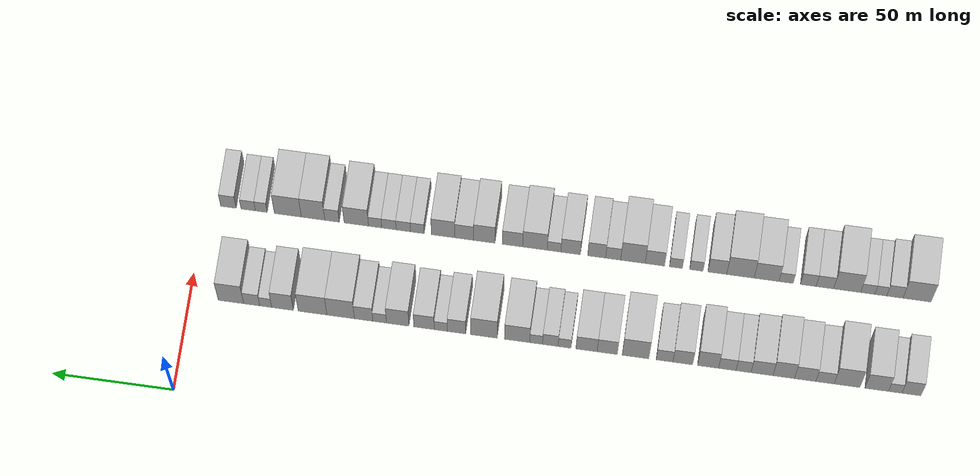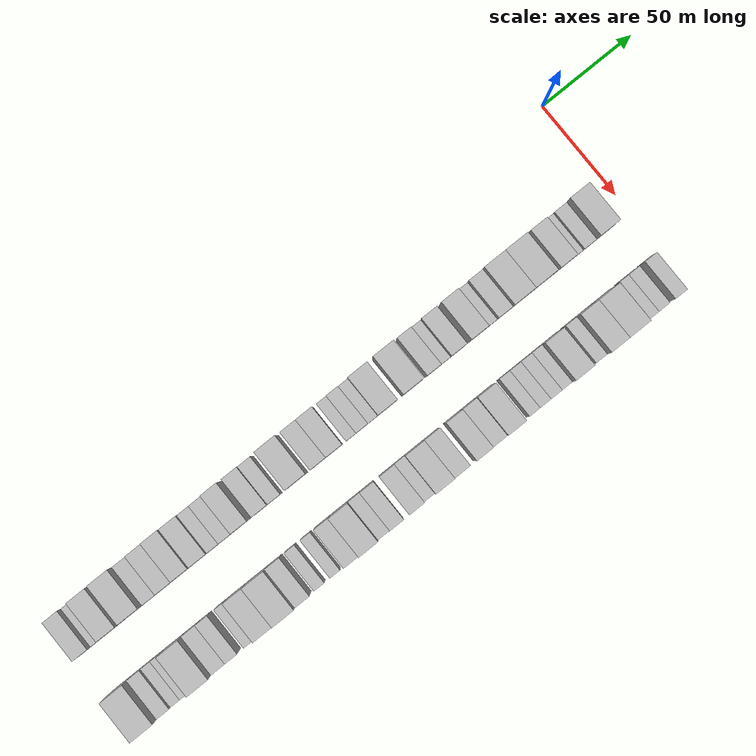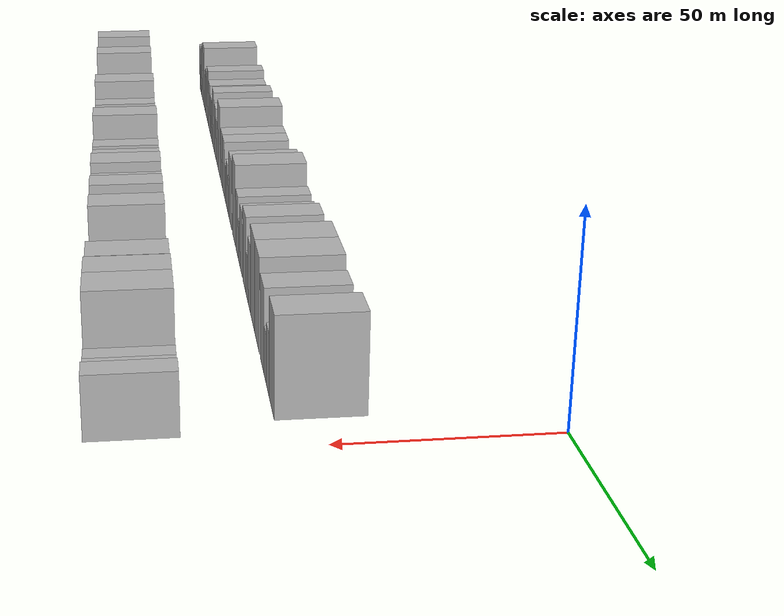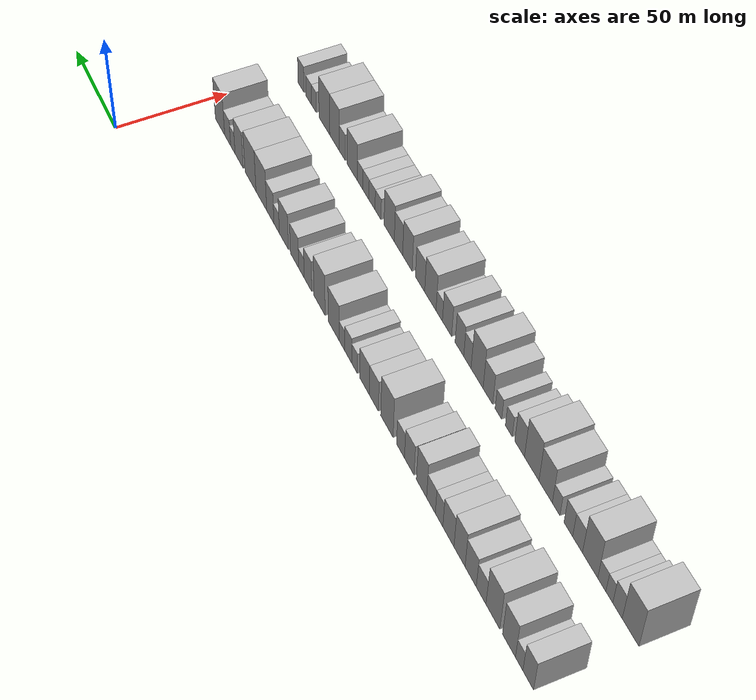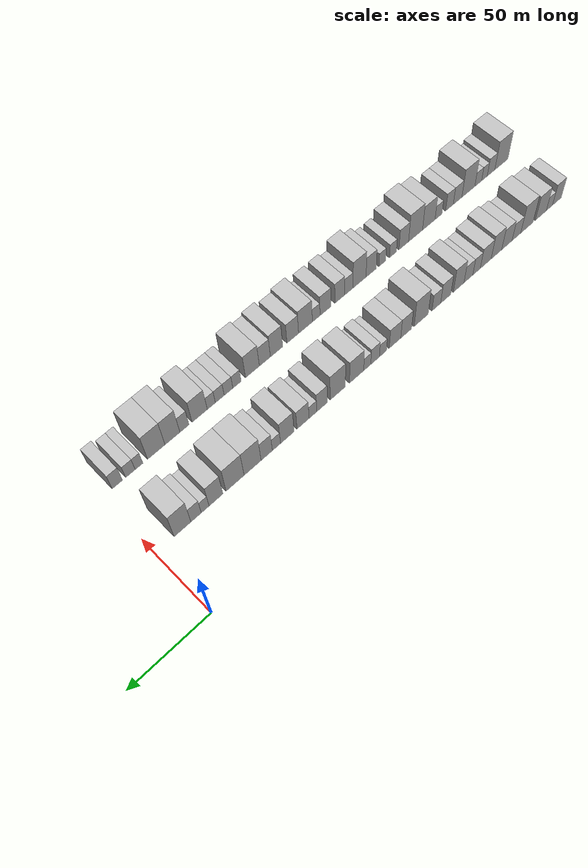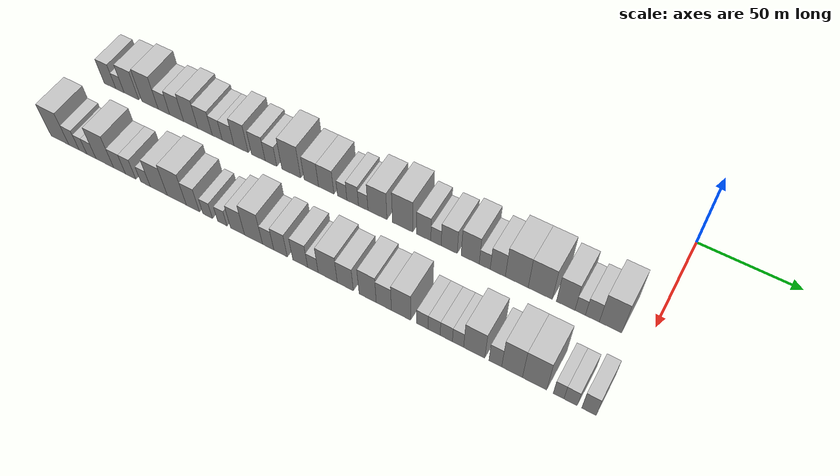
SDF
<sdf version="1.6">
 <world name="default">
  <model name="building_1">
   <static>1</static>
   <pose>50.0000 -296.1191 0 0.000000 0.000000 0.000000</pose>
   <link name="link">
    <pose>0 0 9.00 0 0 0</pose>
    <collision name="collision"><geometry><box><size>20.0000 7.7617 18.0000</size></box></geometry></collision>
    <visual name="visual">
     <cast_shadows>0</cast_shadows>
     <geometry><box><size>20.0000 7.7617 18.0000</size></box></geometry>
     <material>
      <script>
       <uri>model://HANNAS_wall/materials/scripts</uri>
       <uri>model://HANNAS_wall/materials/textures</uri>
       <name>vrc/HANNAS_wall</name>
      </script>
     </material>
    </visual>
   </link>
  </model>
  <model name="building_2">
   <static>1</static>
   <pose>50.0000 -289.5064 0 0.000000 0.000000 0.000000</pose>
   <link name="link">
    <pose>0 0 6.00 0 0 0</pose>
    <collision name="collision"><geometry><box><size>20.0000 5.4638 12.0000</size></box></geometry></collision>
    <visual name="visual">
     <cast_shadows>0</cast_shadows>
     <geometry><box><size>20.0000 5.4638 12.0000</size></box></geometry>
     <material>
      <script>
       <uri>model://HANNAS_wall/materials/scripts</uri>
       <uri>model://HANNAS_wall/materials/textures</uri>
       <name>vrc/HANNAS_wall</name>
      </script>
     </material>
    </visual>
   </link>
  </model>
  <model name="building_3">
   <static>1</static>
   <pose>50.0000 -281.9822 0 0.000000 0.000000 0.000000</pose>
   <link name="link">
    <pose>0 0 10.50 0 0 0</pose>
    <collision name="collision"><geometry><box><size>20.0000 9.5846 21.0000</size></box></geometry></collision>
    <visual name="visual">
     <cast_shadows>0</cast_shadows>
     <geometry><box><size>20.0000 9.5846 21.0000</size></box></geometry>
     <material>
      <script>
       <uri>model://HANNAS_wall/materials/scripts</uri>
       <uri>model://HANNAS_wall/materials/textures</uri>
       <name>vrc/HANNAS_wall</name>
      </script>
     </material>
    </visual>
   </link>
  </model>
  <model name="building_4">
   <static>1</static>
   <pose>50.0000 -269.9203 0 0.000000 0.000000 0.000000</pose>
   <link name="link">
    <pose>0 0 12.00 0 0 0</pose>
    <collision name="collision"><geometry><box><size>20.0000 10.5393 24.0000</size></box></geometry></collision>
    <visual name="visual">
     <cast_shadows>0</cast_shadows>
     <geometry><box><size>20.0000 10.5393 24.0000</size></box></geometry>
     <material>
      <script>
       <uri>model://HANNAS_wall/materials/scripts</uri>
       <uri>model://HANNAS_wall/materials/textures</uri>
       <name>vrc/HANNAS_wall</name>
      </script>
     </material>
    </visual>
   </link>
  </model>
  <model name="building_5">
   <static>1</static>
   <pose>50.0000 -260.9323 0 0.000000 0.000000 0.000000</pose>
   <link name="link">
    <pose>0 0 7.50 0 0 0</pose>
    <collision name="collision"><geometry><box><size>20.0000 7.4368 15.0000</size></box></geometry></collision>
    <visual name="visual">
     <cast_shadows>0</cast_shadows>
     <geometry><box><size>20.0000 7.4368 15.0000</size></box></geometry>
     <material>
      <script>
       <uri>model://HANNAS_wall/materials/scripts</uri>
       <uri>model://HANNAS_wall/materials/textures</uri>
       <name>vrc/HANNAS_wall</name>
      </script>
     </material>
    </visual>
   </link>
  </model>
  <model name="building_6">
   <static>1</static>
   <pose>50.0000 -252.8447 0 0.000000 0.000000 0.000000</pose>
   <link name="link">
    <pose>0 0 9.00 0 0 0</pose>
    <collision name="collision"><geometry><box><size>20.0000 8.7385 18.0000</size></box></geometry></collision>
    <visual name="visual">
     <cast_shadows>0</cast_shadows>
     <geometry><box><size>20.0000 8.7385 18.0000</size></box></geometry>
     <material>
      <script>
       <uri>model://HANNAS_wall/materials/scripts</uri>
       <uri>model://HANNAS_wall/materials/textures</uri>
       <name>vrc/HANNAS_wall</name>
      </script>
     </material>
    </visual>
   </link>
  </model>
  <model name="building_7">
   <static>1</static>
   <pose>50.0000 -244.0707 0 0.000000 0.000000 0.000000</pose>
   <link name="link">
    <pose>0 0 10.50 0 0 0</pose>
    <collision name="collision"><geometry><box><size>20.0000 8.8095 21.0000</size></box></geometry></collision>
    <visual name="visual">
     <cast_shadows>0</cast_shadows>
     <geometry><box><size>20.0000 8.8095 21.0000</size></box></geometry>
     <material>
      <script>
       <uri>model://HANNAS_wall/materials/scripts</uri>
       <uri>model://HANNAS_wall/materials/textures</uri>
       <name>vrc/HANNAS_wall</name>
      </script>
     </material>
    </visual>
   </link>
  </model>
  <model name="building_8">
   <static>1</static>
   <pose>50.0000 -235.1789 0 0.000000 0.000000 0.000000</pose>
   <link name="link">
    <pose>0 0 9.00 0 0 0</pose>
    <collision name="collision"><geometry><box><size>20.0000 8.9741 18.0000</size></box></geometry></collision>
    <visual name="visual">
     <cast_shadows>0</cast_shadows>
     <geometry><box><size>20.0000 8.9741 18.0000</size></box></geometry>
     <material>
      <script>
       <uri>model://HANNAS_wall/materials/scripts</uri>
       <uri>model://HANNAS_wall/materials/textures</uri>
       <name>vrc/HANNAS_wall</name>
      </script>
     </material>
    </visual>
   </link>
  </model>
  <model name="building_9">
   <static>1</static>
   <pose>50.0000 -227.6335 0 0.000000 0.000000 0.000000</pose>
   <link name="link">
    <pose>0 0 7.50 0 0 0</pose>
    <collision name="collision"><geometry><box><size>20.0000 6.1166 15.0000</size></box></geometry></collision>
    <visual name="visual">
     <cast_shadows>0</cast_shadows>
     <geometry><box><size>20.0000 6.1166 15.0000</size></box></geometry>
     <material>
      <script>
       <uri>model://HANNAS_wall/materials/scripts</uri>
       <uri>model://HANNAS_wall/materials/textures</uri>
       <name>vrc/HANNAS_wall</name>
      </script>
     </material>
    </visual>
   </link>
  </model>
  <model name="building_10">
   <static>1</static>
   <pose>50.0000 -220.9918 0 0.000000 0.000000 0.000000</pose>
   <link name="link">
    <pose>0 0 7.50 0 0 0</pose>
    <collision name="collision"><geometry><box><size>20.0000 7.1667 15.0000</size></box></geometry></collision>
    <visual name="visual">
     <cast_shadows>0</cast_shadows>
     <geometry><box><size>20.0000 7.1667 15.0000</size></box></geometry>
     <material>
      <script>
       <uri>model://HANNAS_wall/materials/scripts</uri>
       <uri>model://HANNAS_wall/materials/textures</uri>
       <name>vrc/HANNAS_wall</name>
      </script>
     </material>
    </visual>
   </link>
  </model>
  <model name="building_11">
   <static>1</static>
   <pose>50.0000 -213.1312 0 0.000000 0.000000 0.000000</pose>
   <link name="link">
    <pose>0 0 10.50 0 0 0</pose>
    <collision name="collision"><geometry><box><size>20.0000 8.5546 21.0000</size></box></geometry></collision>
    <visual name="visual">
     <cast_shadows>0</cast_shadows>
     <geometry><box><size>20.0000 8.5546 21.0000</size></box></geometry>
     <material>
      <script>
       <uri>model://HANNAS_wall/materials/scripts</uri>
       <uri>model://HANNAS_wall/materials/textures</uri>
       <name>vrc/HANNAS_wall</name>
      </script>
     </material>
    </visual>
   </link>
  </model>
  <model name="building_12">
   <static>1</static>
   <pose>50.0000 -202.7954 0 0.000000 0.000000 0.000000</pose>
   <link name="link">
    <pose>0 0 9.00 0 0 0</pose>
    <collision name="collision"><geometry><box><size>20.0000 8.1169 18.0000</size></box></geometry></collision>
    <visual name="visual">
     <cast_shadows>0</cast_shadows>
     <geometry><box><size>20.0000 8.1169 18.0000</size></box></geometry>
     <material>
      <script>
       <uri>model://HANNAS_wall/materials/scripts</uri>
       <uri>model://HANNAS_wall/materials/textures</uri>
       <name>vrc/HANNAS_wall</name>
      </script>
     </material>
    </visual>
   </link>
  </model>
  <model name="building_13">
   <static>1</static>
   <pose>50.0000 -195.3282 0 0.000000 0.000000 0.000000</pose>
   <link name="link">
    <pose>0 0 7.50 0 0 0</pose>
    <collision name="collision"><geometry><box><size>20.0000 6.8176 15.0000</size></box></geometry></collision>
    <visual name="visual">
     <cast_shadows>0</cast_shadows>
     <geometry><box><size>20.0000 6.8176 15.0000</size></box></geometry>
     <material>
      <script>
       <uri>model://HANNAS_wall/materials/scripts</uri>
       <uri>model://HANNAS_wall/materials/textures</uri>
       <name>vrc/HANNAS_wall</name>
      </script>
     </material>
    </visual>
   </link>
  </model>
  <model name="building_14">
   <static>1</static>
   <pose>50.0000 -183.4700 0 0.000000 0.000000 0.000000</pose>
   <link name="link">
    <pose>0 0 12.00 0 0 0</pose>
    <collision name="collision"><geometry><box><size>20.0000 10.8988 24.0000</size></box></geometry></collision>
    <visual name="visual">
     <cast_shadows>0</cast_shadows>
     <geometry><box><size>20.0000 10.8988 24.0000</size></box></geometry>
     <material>
      <script>
       <uri>model://HANNAS_wall/materials/scripts</uri>
       <uri>model://HANNAS_wall/materials/textures</uri>
       <name>vrc/HANNAS_wall</name>
      </script>
     </material>
    </visual>
   </link>
  </model>
  <model name="building_15">
   <static>1</static>
   <pose>50.0000 -171.8970 0 0.000000 0.000000 0.000000</pose>
   <link name="link">
    <pose>0 0 9.00 0 0 0</pose>
    <collision name="collision"><geometry><box><size>20.0000 8.2473 18.0000</size></box></geometry></collision>
    <visual name="visual">
     <cast_shadows>0</cast_shadows>
     <geometry><box><size>20.0000 8.2473 18.0000</size></box></geometry>
     <material>
      <script>
       <uri>model://HANNAS_wall/materials/scripts</uri>
       <uri>model://HANNAS_wall/materials/textures</uri>
       <name>vrc/HANNAS_wall</name>
      </script>
     </material>
    </visual>
   </link>
  </model>
  <model name="building_16">
   <static>1</static>
   <pose>50.0000 -163.4078 0 0.000000 0.000000 0.000000</pose>
   <link name="link">
    <pose>0 0 9.00 0 0 0</pose>
    <collision name="collision"><geometry><box><size>20.0000 8.7312 18.0000</size></box></geometry></collision>
    <visual name="visual">
     <cast_shadows>0</cast_shadows>
     <geometry><box><size>20.0000 8.7312 18.0000</size></box></geometry>
     <material>
      <script>
       <uri>model://HANNAS_wall/materials/scripts</uri>
       <uri>model://HANNAS_wall/materials/textures</uri>
       <name>vrc/HANNAS_wall</name>
      </script>
     </material>
    </visual>
   </link>
  </model>
  <model name="building_17">
   <static>1</static>
   <pose>50.0000 -154.3923 0 0.000000 0.000000 0.000000</pose>
   <link name="link">
    <pose>0 0 6.00 0 0 0</pose>
    <collision name="collision"><geometry><box><size>20.0000 5.2997 12.0000</size></box></geometry></collision>
    <visual name="visual">
     <cast_shadows>0</cast_shadows>
     <geometry><box><size>20.0000 5.2997 12.0000</size></box></geometry>
     <material>
      <script>
       <uri>model://HANNAS_wall/materials/scripts</uri>
       <uri>model://HANNAS_wall/materials/textures</uri>
       <name>vrc/HANNAS_wall</name>
      </script>
     </material>
    </visual>
   </link>
  </model>
  <model name="building_18">
   <static>1</static>
   <pose>50.0000 -148.5322 0 0.000000 0.000000 0.000000</pose>
   <link name="link">
    <pose>0 0 7.50 0 0 0</pose>
    <collision name="collision"><geometry><box><size>20.0000 6.4204 15.0000</size></box></geometry></collision>
    <visual name="visual">
     <cast_shadows>0</cast_shadows>
     <geometry><box><size>20.0000 6.4204 15.0000</size></box></geometry>
     <material>
      <script>
       <uri>model://HANNAS_wall/materials/scripts</uri>
       <uri>model://HANNAS_wall/materials/textures</uri>
       <name>vrc/HANNAS_wall</name>
      </script>
     </material>
    </visual>
   </link>
  </model>
  <model name="building_19">
   <static>1</static>
   <pose>50.0000 -142.7000 0 0.000000 0.000000 0.000000</pose>
   <link name="link">
    <pose>0 0 6.00 0 0 0</pose>
    <collision name="collision"><geometry><box><size>20.0000 5.2441 12.0000</size></box></geometry></collision>
    <visual name="visual">
     <cast_shadows>0</cast_shadows>
     <geometry><box><size>20.0000 5.2441 12.0000</size></box></geometry>
     <material>
      <script>
       <uri>model://HANNAS_wall/materials/scripts</uri>
       <uri>model://HANNAS_wall/materials/textures</uri>
       <name>vrc/HANNAS_wall</name>
      </script>
     </material>
    </visual>
   </link>
  </model>
  <model name="building_20">
   <static>1</static>
   <pose>50.0000 -134.8904 0 0.000000 0.000000 0.000000</pose>
   <link name="link">
    <pose>0 0 10.50 0 0 0</pose>
    <collision name="collision"><geometry><box><size>20.0000 10.3751 21.0000</size></box></geometry></collision>
    <visual name="visual">
     <cast_shadows>0</cast_shadows>
     <geometry><box><size>20.0000 10.3751 21.0000</size></box></geometry>
     <material>
      <script>
       <uri>model://HANNAS_wall/materials/scripts</uri>
       <uri>model://HANNAS_wall/materials/textures</uri>
       <name>vrc/HANNAS_wall</name>
      </script>
     </material>
    </visual>
   </link>
  </model>
  <model name="building_21">
   <static>1</static>
   <pose>50.0000 -121.2510 0 0.000000 0.000000 0.000000</pose>
   <link name="link">
    <pose>0 0 12.00 0 0 0</pose>
    <collision name="collision"><geometry><box><size>20.0000 10.9037 24.0000</size></box></geometry></collision>
    <visual name="visual">
     <cast_shadows>0</cast_shadows>
     <geometry><box><size>20.0000 10.9037 24.0000</size></box></geometry>
     <material>
      <script>
       <uri>model://HANNAS_wall/materials/scripts</uri>
       <uri>model://HANNAS_wall/materials/textures</uri>
       <name>vrc/HANNAS_wall</name>
      </script>
     </material>
    </visual>
   </link>
  </model>
  <model name="building_22">
   <static>1</static>
   <pose>50.0000 -110.0232 0 0.000000 0.000000 0.000000</pose>
   <link name="link">
    <pose>0 0 9.00 0 0 0</pose>
    <collision name="collision"><geometry><box><size>20.0000 7.5519 18.0000</size></box></geometry></collision>
    <visual name="visual">
     <cast_shadows>0</cast_shadows>
     <geometry><box><size>20.0000 7.5519 18.0000</size></box></geometry>
     <material>
      <script>
       <uri>model://HANNAS_wall/materials/scripts</uri>
       <uri>model://HANNAS_wall/materials/textures</uri>
       <name>vrc/HANNAS_wall</name>
      </script>
     </material>
    </visual>
   </link>
  </model>
  <model name="building_23">
   <static>1</static>
   <pose>50.0000 -103.5406 0 0.000000 0.000000 0.000000</pose>
   <link name="link">
    <pose>0 0 6.00 0 0 0</pose>
    <collision name="collision"><geometry><box><size>20.0000 5.4134 12.0000</size></box></geometry></collision>
    <visual name="visual">
     <cast_shadows>0</cast_shadows>
     <geometry><box><size>20.0000 5.4134 12.0000</size></box></geometry>
     <material>
      <script>
       <uri>model://HANNAS_wall/materials/scripts</uri>
       <uri>model://HANNAS_wall/materials/textures</uri>
       <name>vrc/HANNAS_wall</name>
      </script>
     </material>
    </visual>
   </link>
  </model>
  <model name="building_24">
   <static>1</static>
   <pose>50.0000 -96.6438 0 0.000000 0.000000 0.000000</pose>
   <link name="link">
    <pose>0 0 9.00 0 0 0</pose>
    <collision name="collision"><geometry><box><size>20.0000 8.3801 18.0000</size></box></geometry></collision>
    <visual name="visual">
     <cast_shadows>0</cast_shadows>
     <geometry><box><size>20.0000 8.3801 18.0000</size></box></geometry>
     <material>
      <script>
       <uri>model://HANNAS_wall/materials/scripts</uri>
       <uri>model://HANNAS_wall/materials/textures</uri>
       <name>vrc/HANNAS_wall</name>
      </script>
     </material>
    </visual>
   </link>
  </model>
  <model name="building_25">
   <static>1</static>
   <pose>50.0000 -85.8106 0 0.000000 0.000000 0.000000</pose>
   <link name="link">
    <pose>0 0 10.50 0 0 0</pose>
    <collision name="collision"><geometry><box><size>20.0000 9.2864 21.0000</size></box></geometry></collision>
    <visual name="visual">
     <cast_shadows>0</cast_shadows>
     <geometry><box><size>20.0000 9.2864 21.0000</size></box></geometry>
     <material>
      <script>
       <uri>model://HANNAS_wall/materials/scripts</uri>
       <uri>model://HANNAS_wall/materials/textures</uri>
       <name>vrc/HANNAS_wall</name>
      </script>
     </material>
    </visual>
   </link>
  </model>
  <model name="building_26">
   <static>1</static>
   <pose>50.0000 -78.3732 0 0.000000 0.000000 0.000000</pose>
   <link name="link">
    <pose>0 0 6.00 0 0 0</pose>
    <collision name="collision"><geometry><box><size>20.0000 5.5884 12.0000</size></box></geometry></collision>
    <visual name="visual">
     <cast_shadows>0</cast_shadows>
     <geometry><box><size>20.0000 5.5884 12.0000</size></box></geometry>
     <material>
      <script>
       <uri>model://HANNAS_wall/materials/scripts</uri>
       <uri>model://HANNAS_wall/materials/textures</uri>
       <name>vrc/HANNAS_wall</name>
      </script>
     </material>
    </visual>
   </link>
  </model>
  <model name="building_27">
   <static>1</static>
   <pose>50.0000 -71.7725 0 0.000000 0.000000 0.000000</pose>
   <link name="link">
    <pose>0 0 9.00 0 0 0</pose>
    <collision name="collision"><geometry><box><size>20.0000 7.6129 18.0000</size></box></geometry></collision>
    <visual name="visual">
     <cast_shadows>0</cast_shadows>
     <geometry><box><size>20.0000 7.6129 18.0000</size></box></geometry>
     <material>
      <script>
       <uri>model://HANNAS_wall/materials/scripts</uri>
       <uri>model://HANNAS_wall/materials/textures</uri>
       <name>vrc/HANNAS_wall</name>
      </script>
     </material>
    </visual>
   </link>
  </model>
  <model name="building_28">
   <static>1</static>
   <pose>50.0000 -62.2975 0 0.000000 0.000000 0.000000</pose>
   <link name="link">
    <pose>0 0 12.00 0 0 0</pose>
    <collision name="collision"><geometry><box><size>20.0000 11.3370 24.0000</size></box></geometry></collision>
    <visual name="visual">
     <cast_shadows>0</cast_shadows>
     <geometry><box><size>20.0000 11.3370 24.0000</size></box></geometry>
     <material>
      <script>
       <uri>model://HANNAS_wall/materials/scripts</uri>
       <uri>model://HANNAS_wall/materials/textures</uri>
       <name>vrc/HANNAS_wall</name>
      </script>
     </material>
    </visual>
   </link>
  </model>
  <model name="building_29">
   <static>1</static>
   <pose>50.0000 -50.7047 0 0.000000 0.000000 0.000000</pose>
   <link name="link">
    <pose>0 0 12.00 0 0 0</pose>
    <collision name="collision"><geometry><box><size>20.0000 11.8486 24.0000</size></box></geometry></collision>
    <visual name="visual">
     <cast_shadows>0</cast_shadows>
     <geometry><box><size>20.0000 11.8486 24.0000</size></box></geometry>
     <material>
      <script>
       <uri>model://HANNAS_wall/materials/scripts</uri>
       <uri>model://HANNAS_wall/materials/textures</uri>
       <name>vrc/HANNAS_wall</name>
      </script>
     </material>
    </visual>
   </link>
  </model>
  <model name="building_30">
   <static>1</static>
   <pose>50.0000 -38.3129 0 0.000000 0.000000 0.000000</pose>
   <link name="link">
    <pose>0 0 10.50 0 0 0</pose>
    <collision name="collision"><geometry><box><size>20.0000 8.9351 21.0000</size></box></geometry></collision>
    <visual name="visual">
     <cast_shadows>0</cast_shadows>
     <geometry><box><size>20.0000 8.9351 21.0000</size></box></geometry>
     <material>
      <script>
       <uri>model://HANNAS_wall/materials/scripts</uri>
       <uri>model://HANNAS_wall/materials/textures</uri>
       <name>vrc/HANNAS_wall</name>
      </script>
     </material>
    </visual>
   </link>
  </model>
  <model name="building_31">
   <static>1</static>
   <pose>50.0000 -31.3603 0 0.000000 0.000000 0.000000</pose>
   <link name="link">
    <pose>0 0 6.00 0 0 0</pose>
    <collision name="collision"><geometry><box><size>20.0000 4.9701 12.0000</size></box></geometry></collision>
    <visual name="visual">
     <cast_shadows>0</cast_shadows>
     <geometry><box><size>20.0000 4.9701 12.0000</size></box></geometry>
     <material>
      <script>
       <uri>model://HANNAS_wall/materials/scripts</uri>
       <uri>model://HANNAS_wall/materials/textures</uri>
       <name>vrc/HANNAS_wall</name>
      </script>
     </material>
    </visual>
   </link>
  </model>
  <model name="building_32">
   <static>1</static>
   <pose>50.0000 -25.5734 0 0.000000 0.000000 0.000000</pose>
   <link name="link">
    <pose>0 0 7.50 0 0 0</pose>
    <collision name="collision"><geometry><box><size>20.0000 6.6037 15.0000</size></box></geometry></collision>
    <visual name="visual">
     <cast_shadows>0</cast_shadows>
     <geometry><box><size>20.0000 6.6037 15.0000</size></box></geometry>
     <material>
      <script>
       <uri>model://HANNAS_wall/materials/scripts</uri>
       <uri>model://HANNAS_wall/materials/textures</uri>
       <name>vrc/HANNAS_wall</name>
      </script>
     </material>
    </visual>
   </link>
  </model>
  <model name="building_33">
   <static>1</static>
   <pose>50.0000 -17.0000 0 0.000000 0.000000 0.000000</pose>
   <link name="link">
    <pose>0 0 12.00 0 0 0</pose>
    <collision name="collision"><geometry><box><size>20.0000 10.5430 24.0000</size></box></geometry></collision>
    <visual name="visual">
     <cast_shadows>0</cast_shadows>
     <geometry><box><size>20.0000 10.5430 24.0000</size></box></geometry>
     <material>
      <script>
       <uri>model://HANNAS_wall/materials/scripts</uri>
       <uri>model://HANNAS_wall/materials/textures</uri>
       <name>vrc/HANNAS_wall</name>
      </script>
     </material>
    </visual>
   </link>
  </model>
  <model name="building_70">
   <static>1</static>
   <pose>90.0000 -294.2037 0 0.000000 0.000000 0.000000</pose>
   <link name="link">
    <pose>0 0 12.00 0 0 0</pose>
    <collision name="collision"><geometry><box><size>20.0000 11.5926 24.0000</size></box></geometry></collision>
    <visual name="visual">
     <cast_shadows>0</cast_shadows>
     <geometry><box><size>20.0000 11.5926 24.0000</size></box></geometry>
     <material>
      <script>
       <uri>model://HANNAS_wall/materials/scripts</uri>
       <uri>model://HANNAS_wall/materials/textures</uri>
       <name>vrc/HANNAS_wall</name>
      </script>
     </material>
    </visual>
   </link>
  </model>
  <model name="building_71">
   <static>1</static>
   <pose>90.0000 -285.1056 0 0.000000 0.000000 0.000000</pose>
   <link name="link">
    <pose>0 0 7.50 0 0 0</pose>
    <collision name="collision"><geometry><box><size>20.0000 6.6035 15.0000</size></box></geometry></collision>
    <visual name="visual">
     <cast_shadows>0</cast_shadows>
     <geometry><box><size>20.0000 6.6035 15.0000</size></box></geometry>
     <material>
      <script>
       <uri>model://HANNAS_wall/materials/scripts</uri>
       <uri>model://HANNAS_wall/materials/textures</uri>
       <name>vrc/HANNAS_wall</name>
      </script>
     </material>
    </visual>
   </link>
  </model>
  <model name="building_72">
   <static>1</static>
   <pose>90.0000 -279.3590 0 0.000000 0.000000 0.000000</pose>
   <link name="link">
    <pose>0 0 6.00 0 0 0</pose>
    <collision name="collision"><geometry><box><size>20.0000 4.8897 12.0000</size></box></geometry></collision>
    <visual name="visual">
     <cast_shadows>0</cast_shadows>
     <geometry><box><size>20.0000 4.8897 12.0000</size></box></geometry>
     <material>
      <script>
       <uri>model://HANNAS_wall/materials/scripts</uri>
       <uri>model://HANNAS_wall/materials/textures</uri>
       <name>vrc/HANNAS_wall</name>
      </script>
     </material>
    </visual>
   </link>
  </model>
  <model name="building_73">
   <static>1</static>
   <pose>90.0000 -273.9968 0 0.000000 0.000000 0.000000</pose>
   <link name="link">
    <pose>0 0 6.00 0 0 0</pose>
    <collision name="collision"><geometry><box><size>20.0000 5.8347 12.0000</size></box></geometry></collision>
    <visual name="visual">
     <cast_shadows>0</cast_shadows>
     <geometry><box><size>20.0000 5.8347 12.0000</size></box></geometry>
     <material>
      <script>
       <uri>model://HANNAS_wall/materials/scripts</uri>
       <uri>model://HANNAS_wall/materials/textures</uri>
       <name>vrc/HANNAS_wall</name>
      </script>
     </material>
    </visual>
   </link>
  </model>
  <model name="building_74">
   <static>1</static>
   <pose>90.0000 -265.5483 0 0.000000 0.000000 0.000000</pose>
   <link name="link">
    <pose>0 0 12.00 0 0 0</pose>
    <collision name="collision"><geometry><box><size>20.0000 11.0624 24.0000</size></box></geometry></collision>
    <visual name="visual">
     <cast_shadows>0</cast_shadows>
     <geometry><box><size>20.0000 11.0624 24.0000</size></box></geometry>
     <material>
      <script>
       <uri>model://HANNAS_wall/materials/scripts</uri>
       <uri>model://HANNAS_wall/materials/textures</uri>
       <name>vrc/HANNAS_wall</name>
      </script>
     </material>
    </visual>
   </link>
  </model>
  <model name="building_75">
   <static>1</static>
   <pose>90.0000 -256.3970 0 0.000000 0.000000 0.000000</pose>
   <link name="link">
    <pose>0 0 7.50 0 0 0</pose>
    <collision name="collision"><geometry><box><size>20.0000 7.2402 15.0000</size></box></geometry></collision>
    <visual name="visual">
     <cast_shadows>0</cast_shadows>
     <geometry><box><size>20.0000 7.2402 15.0000</size></box></geometry>
     <material>
      <script>
       <uri>model://HANNAS_wall/materials/scripts</uri>
       <uri>model://HANNAS_wall/materials/textures</uri>
       <name>vrc/HANNAS_wall</name>
      </script>
     </material>
    </visual>
   </link>
  </model>
  <model name="building_76">
   <static>1</static>
   <pose>90.0000 -249.5553 0 0.000000 0.000000 0.000000</pose>
   <link name="link">
    <pose>0 0 7.50 0 0 0</pose>
    <collision name="collision"><geometry><box><size>20.0000 6.4432 15.0000</size></box></geometry></collision>
    <visual name="visual">
     <cast_shadows>0</cast_shadows>
     <geometry><box><size>20.0000 6.4432 15.0000</size></box></geometry>
     <material>
      <script>
       <uri>model://HANNAS_wall/materials/scripts</uri>
       <uri>model://HANNAS_wall/materials/textures</uri>
       <name>vrc/HANNAS_wall</name>
      </script>
     </material>
    </visual>
   </link>
  </model>
  <model name="building_77">
   <static>1</static>
   <pose>90.0000 -240.4189 0 0.000000 0.000000 0.000000</pose>
   <link name="link">
    <pose>0 0 6.00 0 0 0</pose>
    <collision name="collision"><geometry><box><size>20.0000 5.8294 12.0000</size></box></geometry></collision>
    <visual name="visual">
     <cast_shadows>0</cast_shadows>
     <geometry><box><size>20.0000 5.8294 12.0000</size></box></geometry>
     <material>
      <script>
       <uri>model://HANNAS_wall/materials/scripts</uri>
       <uri>model://HANNAS_wall/materials/textures</uri>
       <name>vrc/HANNAS_wall</name>
      </script>
     </material>
    </visual>
   </link>
  </model>
  <model name="building_78">
   <static>1</static>
   <pose>90.0000 -232.3785 0 0.000000 0.000000 0.000000</pose>
   <link name="link">
    <pose>0 0 10.50 0 0 0</pose>
    <collision name="collision"><geometry><box><size>20.0000 10.2515 21.0000</size></box></geometry></collision>
    <visual name="visual">
     <cast_shadows>0</cast_shadows>
     <geometry><box><size>20.0000 10.2515 21.0000</size></box></geometry>
     <material>
      <script>
       <uri>model://HANNAS_wall/materials/scripts</uri>
       <uri>model://HANNAS_wall/materials/textures</uri>
       <name>vrc/HANNAS_wall</name>
      </script>
     </material>
    </visual>
   </link>
  </model>
  <model name="building_79">
   <static>1</static>
   <pose>90.0000 -221.5871 0 0.000000 0.000000 0.000000</pose>
   <link name="link">
    <pose>0 0 12.00 0 0 0</pose>
    <collision name="collision"><geometry><box><size>20.0000 11.3312 24.0000</size></box></geometry></collision>
    <visual name="visual">
     <cast_shadows>0</cast_shadows>
     <geometry><box><size>20.0000 11.3312 24.0000</size></box></geometry>
     <material>
      <script>
       <uri>model://HANNAS_wall/materials/scripts</uri>
       <uri>model://HANNAS_wall/materials/textures</uri>
       <name>vrc/HANNAS_wall</name>
      </script>
     </material>
    </visual>
   </link>
  </model>
  <model name="building_80">
   <static>1</static>
   <pose>90.0000 -212.0678 0 0.000000 0.000000 0.000000</pose>
   <link name="link">
    <pose>0 0 9.00 0 0 0</pose>
    <collision name="collision"><geometry><box><size>20.0000 7.7074 18.0000</size></box></geometry></collision>
    <visual name="visual">
     <cast_shadows>0</cast_shadows>
     <geometry><box><size>20.0000 7.7074 18.0000</size></box></geometry>
     <material>
      <script>
       <uri>model://HANNAS_wall/materials/scripts</uri>
       <uri>model://HANNAS_wall/materials/textures</uri>
       <name>vrc/HANNAS_wall</name>
      </script>
     </material>
    </visual>
   </link>
  </model>
  <model name="building_81">
   <static>1</static>
   <pose>90.0000 -203.4498 0 0.000000 0.000000 0.000000</pose>
   <link name="link">
    <pose>0 0 6.00 0 0 0</pose>
    <collision name="collision"><geometry><box><size>20.0000 5.5286 12.0000</size></box></geometry></collision>
    <visual name="visual">
     <cast_shadows>0</cast_shadows>
     <geometry><box><size>20.0000 5.5286 12.0000</size></box></geometry>
     <material>
      <script>
       <uri>model://HANNAS_wall/materials/scripts</uri>
       <uri>model://HANNAS_wall/materials/textures</uri>
       <name>vrc/HANNAS_wall</name>
      </script>
     </material>
    </visual>
   </link>
  </model>
  <model name="building_82">
   <static>1</static>
   <pose>90.0000 -195.0037 0 0.000000 0.000000 0.000000</pose>
   <link name="link">
    <pose>0 0 6.00 0 0 0</pose>
    <collision name="collision"><geometry><box><size>20.0000 5.3634 12.0000</size></box></geometry></collision>
    <visual name="visual">
     <cast_shadows>0</cast_shadows>
     <geometry><box><size>20.0000 5.3634 12.0000</size></box></geometry>
     <material>
      <script>
       <uri>model://HANNAS_wall/materials/scripts</uri>
       <uri>model://HANNAS_wall/materials/textures</uri>
       <name>vrc/HANNAS_wall</name>
      </script>
     </material>
    </visual>
   </link>
  </model>
  <model name="building_83">
   <static>1</static>
   <pose>90.0000 -186.3278 0 0.000000 0.000000 0.000000</pose>
   <link name="link">
    <pose>0 0 9.00 0 0 0</pose>
    <collision name="collision"><geometry><box><size>20.0000 7.9885 18.0000</size></box></geometry></collision>
    <visual name="visual">
     <cast_shadows>0</cast_shadows>
     <geometry><box><size>20.0000 7.9885 18.0000</size></box></geometry>
     <material>
      <script>
       <uri>model://HANNAS_wall/materials/scripts</uri>
       <uri>model://HANNAS_wall/materials/textures</uri>
       <name>vrc/HANNAS_wall</name>
      </script>
     </material>
    </visual>
   </link>
  </model>
  <model name="building_84">
   <static>1</static>
   <pose>90.0000 -177.2716 0 0.000000 0.000000 0.000000</pose>
   <link name="link">
    <pose>0 0 12.00 0 0 0</pose>
    <collision name="collision"><geometry><box><size>20.0000 10.1237 24.0000</size></box></geometry></collision>
    <visual name="visual">
     <cast_shadows>0</cast_shadows>
     <geometry><box><size>20.0000 10.1237 24.0000</size></box></geometry>
     <material>
      <script>
       <uri>model://HANNAS_wall/materials/scripts</uri>
       <uri>model://HANNAS_wall/materials/textures</uri>
       <name>vrc/HANNAS_wall</name>
      </script>
     </material>
    </visual>
   </link>
  </model>
  <model name="building_85">
   <static>1</static>
   <pose>90.0000 -169.0961 0 0.000000 0.000000 0.000000</pose>
   <link name="link">
    <pose>0 0 7.50 0 0 0</pose>
    <collision name="collision"><geometry><box><size>20.0000 6.2273 15.0000</size></box></geometry></collision>
    <visual name="visual">
     <cast_shadows>0</cast_shadows>
     <geometry><box><size>20.0000 6.2273 15.0000</size></box></geometry>
     <material>
      <script>
       <uri>model://HANNAS_wall/materials/scripts</uri>
       <uri>model://HANNAS_wall/materials/textures</uri>
       <name>vrc/HANNAS_wall</name>
      </script>
     </material>
    </visual>
   </link>
  </model>
  <model name="building_86">
   <static>1</static>
   <pose>90.0000 -162.2699 0 0.000000 0.000000 0.000000</pose>
   <link name="link">
    <pose>0 0 9.00 0 0 0</pose>
    <collision name="collision"><geometry><box><size>20.0000 7.4253 18.0000</size></box></geometry></collision>
    <visual name="visual">
     <cast_shadows>0</cast_shadows>
     <geometry><box><size>20.0000 7.4253 18.0000</size></box></geometry>
     <material>
      <script>
       <uri>model://HANNAS_wall/materials/scripts</uri>
       <uri>model://HANNAS_wall/materials/textures</uri>
       <name>vrc/HANNAS_wall</name>
      </script>
     </material>
    </visual>
   </link>
  </model>
  <model name="building_87">
   <static>1</static>
   <pose>90.0000 -151.5136 0 0.000000 0.000000 0.000000</pose>
   <link name="link">
    <pose>0 0 9.00 0 0 0</pose>
    <collision name="collision"><geometry><box><size>20.0000 8.0872 18.0000</size></box></geometry></collision>
    <visual name="visual">
     <cast_shadows>0</cast_shadows>
     <geometry><box><size>20.0000 8.0872 18.0000</size></box></geometry>
     <material>
      <script>
       <uri>model://HANNAS_wall/materials/scripts</uri>
       <uri>model://HANNAS_wall/materials/textures</uri>
       <name>vrc/HANNAS_wall</name>
      </script>
     </material>
    </visual>
   </link>
  </model>
  <model name="building_88">
   <static>1</static>
   <pose>90.0000 -144.6448 0 0.000000 0.000000 0.000000</pose>
   <link name="link">
    <pose>0 0 6.00 0 0 0</pose>
    <collision name="collision"><geometry><box><size>20.0000 5.6505 12.0000</size></box></geometry></collision>
    <visual name="visual">
     <cast_shadows>0</cast_shadows>
     <geometry><box><size>20.0000 5.6505 12.0000</size></box></geometry>
     <material>
      <script>
       <uri>model://HANNAS_wall/materials/scripts</uri>
       <uri>model://HANNAS_wall/materials/textures</uri>
       <name>vrc/HANNAS_wall</name>
      </script>
     </material>
    </visual>
   </link>
  </model>
  <model name="building_89">
   <static>1</static>
   <pose>90.0000 -136.7394 0 0.000000 0.000000 0.000000</pose>
   <link name="link">
    <pose>0 0 10.50 0 0 0</pose>
    <collision name="collision"><geometry><box><size>20.0000 10.1602 21.0000</size></box></geometry></collision>
    <visual name="visual">
     <cast_shadows>0</cast_shadows>
     <geometry><box><size>20.0000 10.1602 21.0000</size></box></geometry>
     <material>
      <script>
       <uri>model://HANNAS_wall/materials/scripts</uri>
       <uri>model://HANNAS_wall/materials/textures</uri>
       <name>vrc/HANNAS_wall</name>
      </script>
     </material>
    </visual>
   </link>
  </model>
  <model name="building_90">
   <static>1</static>
   <pose>90.0000 -127.4433 0 0.000000 0.000000 0.000000</pose>
   <link name="link">
    <pose>0 0 9.00 0 0 0</pose>
    <collision name="collision"><geometry><box><size>20.0000 8.4321 18.0000</size></box></geometry></collision>
    <visual name="visual">
     <cast_shadows>0</cast_shadows>
     <geometry><box><size>20.0000 8.4321 18.0000</size></box></geometry>
     <material>
      <script>
       <uri>model://HANNAS_wall/materials/scripts</uri>
       <uri>model://HANNAS_wall/materials/textures</uri>
       <name>vrc/HANNAS_wall</name>
      </script>
     </material>
    </visual>
   </link>
  </model>
  <model name="building_91">
   <static>1</static>
   <pose>90.0000 -115.7984 0 0.000000 0.000000 0.000000</pose>
   <link name="link">
    <pose>0 0 10.50 0 0 0</pose>
    <collision name="collision"><geometry><box><size>20.0000 8.8576 21.0000</size></box></geometry></collision>
    <visual name="visual">
     <cast_shadows>0</cast_shadows>
     <geometry><box><size>20.0000 8.8576 21.0000</size></box></geometry>
     <material>
      <script>
       <uri>model://HANNAS_wall/materials/scripts</uri>
       <uri>model://HANNAS_wall/materials/textures</uri>
       <name>vrc/HANNAS_wall</name>
      </script>
     </material>
    </visual>
   </link>
  </model>
  <model name="building_92">
   <static>1</static>
   <pose>90.0000 -107.4759 0 0.000000 0.000000 0.000000</pose>
   <link name="link">
    <pose>0 0 9.00 0 0 0</pose>
    <collision name="collision"><geometry><box><size>20.0000 7.7875 18.0000</size></box></geometry></collision>
    <visual name="visual">
     <cast_shadows>0</cast_shadows>
     <geometry><box><size>20.0000 7.7875 18.0000</size></box></geometry>
     <material>
      <script>
       <uri>model://HANNAS_wall/materials/scripts</uri>
       <uri>model://HANNAS_wall/materials/textures</uri>
       <name>vrc/HANNAS_wall</name>
      </script>
     </material>
    </visual>
   </link>
  </model>
  <model name="building_93">
   <static>1</static>
   <pose>90.0000 -98.7142 0 0.000000 0.000000 0.000000</pose>
   <link name="link">
    <pose>0 0 10.50 0 0 0</pose>
    <collision name="collision"><geometry><box><size>20.0000 9.7357 21.0000</size></box></geometry></collision>
    <visual name="visual">
     <cast_shadows>0</cast_shadows>
     <geometry><box><size>20.0000 9.7357 21.0000</size></box></geometry>
     <material>
      <script>
       <uri>model://HANNAS_wall/materials/scripts</uri>
       <uri>model://HANNAS_wall/materials/textures</uri>
       <name>vrc/HANNAS_wall</name>
      </script>
     </material>
    </visual>
   </link>
  </model>
  <model name="building_94">
   <static>1</static>
   <pose>90.0000 -87.9914 0 0.000000 0.000000 0.000000</pose>
   <link name="link">
    <pose>0 0 6.00 0 0 0</pose>
    <collision name="collision"><geometry><box><size>20.0000 5.7100 12.0000</size></box></geometry></collision>
    <visual name="visual">
     <cast_shadows>0</cast_shadows>
     <geometry><box><size>20.0000 5.7100 12.0000</size></box></geometry>
     <material>
      <script>
       <uri>model://HANNAS_wall/materials/scripts</uri>
       <uri>model://HANNAS_wall/materials/textures</uri>
       <name>vrc/HANNAS_wall</name>
      </script>
     </material>
    </visual>
   </link>
  </model>
  <model name="building_95">
   <static>1</static>
   <pose>90.0000 -82.1597 0 0.000000 0.000000 0.000000</pose>
   <link name="link">
    <pose>0 0 6.00 0 0 0</pose>
    <collision name="collision"><geometry><box><size>20.0000 5.9535 12.0000</size></box></geometry></collision>
    <visual name="visual">
     <cast_shadows>0</cast_shadows>
     <geometry><box><size>20.0000 5.9535 12.0000</size></box></geometry>
     <material>
      <script>
       <uri>model://HANNAS_wall/materials/scripts</uri>
       <uri>model://HANNAS_wall/materials/textures</uri>
       <name>vrc/HANNAS_wall</name>
      </script>
     </material>
    </visual>
   </link>
  </model>
  <model name="building_96">
   <static>1</static>
   <pose>90.0000 -76.1849 0 0.000000 0.000000 0.000000</pose>
   <link name="link">
    <pose>0 0 6.00 0 0 0</pose>
    <collision name="collision"><geometry><box><size>20.0000 5.9962 12.0000</size></box></geometry></collision>
    <visual name="visual">
     <cast_shadows>0</cast_shadows>
     <geometry><box><size>20.0000 5.9962 12.0000</size></box></geometry>
     <material>
      <script>
       <uri>model://HANNAS_wall/materials/scripts</uri>
       <uri>model://HANNAS_wall/materials/textures</uri>
       <name>vrc/HANNAS_wall</name>
      </script>
     </material>
    </visual>
   </link>
  </model>
  <model name="building_97">
   <static>1</static>
   <pose>90.0000 -70.4568 0 0.000000 0.000000 0.000000</pose>
   <link name="link">
    <pose>0 0 6.00 0 0 0</pose>
    <collision name="collision"><geometry><box><size>20.0000 5.4600 12.0000</size></box></geometry></collision>
    <visual name="visual">
     <cast_shadows>0</cast_shadows>
     <geometry><box><size>20.0000 5.4600 12.0000</size></box></geometry>
     <material>
      <script>
       <uri>model://HANNAS_wall/materials/scripts</uri>
       <uri>model://HANNAS_wall/materials/textures</uri>
       <name>vrc/HANNAS_wall</name>
      </script>
     </material>
    </visual>
   </link>
  </model>
  <model name="building_98">
   <static>1</static>
   <pose>90.0000 -62.6425 0 0.000000 0.000000 0.000000</pose>
   <link name="link">
    <pose>0 0 10.50 0 0 0</pose>
    <collision name="collision"><geometry><box><size>20.0000 10.1685 21.0000</size></box></geometry></collision>
    <visual name="visual">
     <cast_shadows>0</cast_shadows>
     <geometry><box><size>20.0000 10.1685 21.0000</size></box></geometry>
     <material>
      <script>
       <uri>model://HANNAS_wall/materials/scripts</uri>
       <uri>model://HANNAS_wall/materials/textures</uri>
       <name>vrc/HANNAS_wall</name>
      </script>
     </material>
    </visual>
   </link>
  </model>
  <model name="building_99">
   <static>1</static>
   <pose>90.0000 -52.5431 0 0.000000 0.000000 0.000000</pose>
   <link name="link">
    <pose>0 0 7.50 0 0 0</pose>
    <collision name="collision"><geometry><box><size>20.0000 6.0304 15.0000</size></box></geometry></collision>
    <visual name="visual">
     <cast_shadows>0</cast_shadows>
     <geometry><box><size>20.0000 6.0304 15.0000</size></box></geometry>
     <material>
      <script>
       <uri>model://HANNAS_wall/materials/scripts</uri>
       <uri>model://HANNAS_wall/materials/textures</uri>
       <name>vrc/HANNAS_wall</name>
      </script>
     </material>
    </visual>
   </link>
  </model>
  <model name="building_100">
   <static>1</static>
   <pose>90.0000 -44.6597 0 0.000000 0.000000 0.000000</pose>
   <link name="link">
    <pose>0 0 12.00 0 0 0</pose>
    <collision name="collision"><geometry><box><size>20.0000 9.7363 24.0000</size></box></geometry></collision>
    <visual name="visual">
     <cast_shadows>0</cast_shadows>
     <geometry><box><size>20.0000 9.7363 24.0000</size></box></geometry>
     <material>
      <script>
       <uri>model://HANNAS_wall/materials/scripts</uri>
       <uri>model://HANNAS_wall/materials/textures</uri>
       <name>vrc/HANNAS_wall</name>
      </script>
     </material>
    </visual>
   </link>
  </model>
  <model name="building_101">
   <static>1</static>
   <pose>90.0000 -34.1775 0 0.000000 0.000000 0.000000</pose>
   <link name="link">
    <pose>0 0 12.00 0 0 0</pose>
    <collision name="collision"><geometry><box><size>20.0000 11.2281 24.0000</size></box></geometry></collision>
    <visual name="visual">
     <cast_shadows>0</cast_shadows>
     <geometry><box><size>20.0000 11.2281 24.0000</size></box></geometry>
     <material>
      <script>
       <uri>model://HANNAS_wall/materials/scripts</uri>
       <uri>model://HANNAS_wall/materials/textures</uri>
       <name>vrc/HANNAS_wall</name>
      </script>
     </material>
    </visual>
   </link>
  </model>
  <model name="building_102">
   <static>1</static>
   <pose>90.0000 -23.1021 0 0.000000 0.000000 0.000000</pose>
   <link name="link">
    <pose>0 0 6.00 0 0 0</pose>
    <collision name="collision"><geometry><box><size>20.0000 4.9227 12.0000</size></box></geometry></collision>
    <visual name="visual">
     <cast_shadows>0</cast_shadows>
     <geometry><box><size>20.0000 4.9227 12.0000</size></box></geometry>
     <material>
      <script>
       <uri>model://HANNAS_wall/materials/scripts</uri>
       <uri>model://HANNAS_wall/materials/textures</uri>
       <name>vrc/HANNAS_wall</name>
      </script>
     </material>
    </visual>
   </link>
  </model>
  <model name="building_103">
   <static>1</static>
   <pose>90.0000 -17.6525 0 0.000000 0.000000 0.000000</pose>
   <link name="link">
    <pose>0 0 6.00 0 0 0</pose>
    <collision name="collision"><geometry><box><size>20.0000 5.9764 12.0000</size></box></geometry></collision>
    <visual name="visual">
     <cast_shadows>0</cast_shadows>
     <geometry><box><size>20.0000 5.9764 12.0000</size></box></geometry>
     <material>
      <script>
       <uri>model://HANNAS_wall/materials/scripts</uri>
       <uri>model://HANNAS_wall/materials/textures</uri>
       <name>vrc/HANNAS_wall</name>
      </script>
     </material>
    </visual>
   </link>
  </model>
  <model name="building_104">
   <static>1</static>
   <pose>90.0000 -9.4292 0 0.000000 0.000000 0.000000</pose>
   <link name="link">
    <pose>0 0 7.50 0 0 0</pose>
    <collision name="collision"><geometry><box><size>20.0000 6.4703 15.0000</size></box></geometry></collision>
    <visual name="visual">
     <cast_shadows>0</cast_shadows>
     <geometry><box><size>20.0000 6.4703 15.0000</size></box></geometry>
     <material>
      <script>
       <uri>model://HANNAS_wall/materials/scripts</uri>
       <uri>model://HANNAS_wall/materials/textures</uri>
       <name>vrc/HANNAS_wall</name>
      </script>
     </material>
    </visual>
   </link>
  </model>
 </world>
</sdf>
